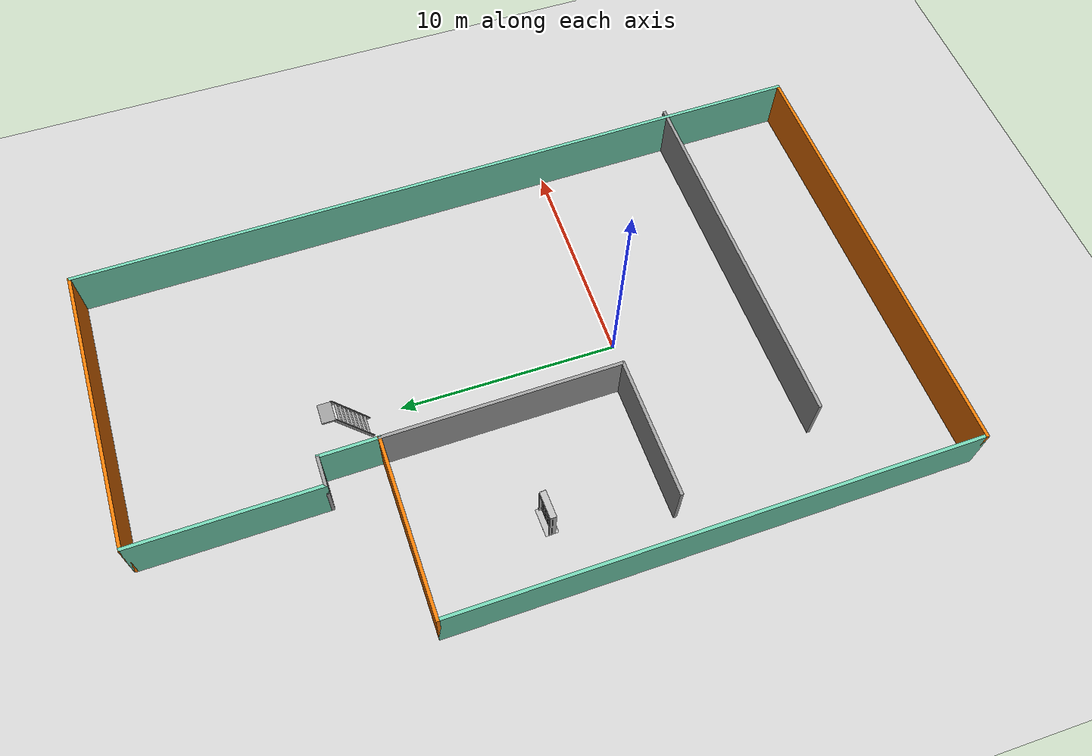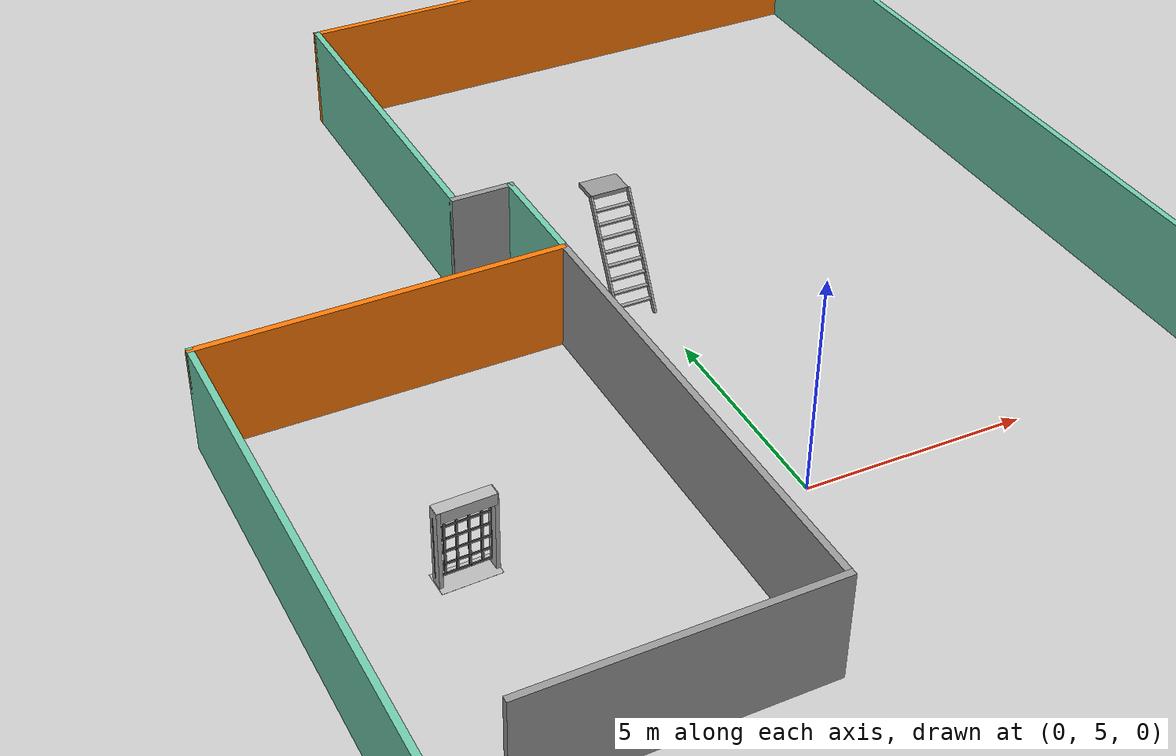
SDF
<sdf version="1.7">
 <world name="default">
  <light name="sun" type="directional">
   <pose>0 0 10 0 -0 0</pose>
   <diffuse>0.8 0.8 0.8 1</diffuse>
   <specular>0.2 0.2 0.2 1</specular>
   <attenuation>
    <range>1000</range>
    <constant>0.9</constant>
    <linear>0.01</linear>
    <quadratic>0.001</quadratic>
   </attenuation>
   <direction>-0.5 0.1 -0.9</direction>
   <spot><inner_angle>0</inner_angle><outer_angle>0</outer_angle><falloff>0</falloff></spot>
  </light>
  <model name="ground_plane">
   <static>1</static>
   <link name="link">
    <collision name="collision">
     <geometry><plane><normal>0 0 1</normal><size>100 100</size></plane></geometry>
     <surface>
      <contact><collide_bitmask>65535</collide_bitmask></contact>
      <friction><ode><mu>100</mu><mu2>50</mu2></ode></friction>
     </surface>
    </collision>
    <visual name="visual">
     <cast_shadows>0</cast_shadows>
     <geometry><plane><normal>0 0 1</normal><size>100 100</size></plane></geometry>
     <material>
      <script><uri>file://media/materials/scripts/gazebo.material</uri><name>Gazebo/Grey</name></script>
     </material>
    </visual>
   </link>
  </model>
  <gravity>0 0 -9.8</gravity>
  <magnetic_field>6e-06 2.3e-05 -4.2e-05</magnetic_field>
  <atmosphere type="adiabatic"/>
  <physics type="ode">
   <max_step_size>0.001</max_step_size>
   <real_time_factor>1</real_time_factor>
   <real_time_update_rate>1000</real_time_update_rate>
  </physics>
  <scene><ambient>0.4 0.4 0.4 1</ambient><background>0.7 0.7 0.7 1</background><shadows>1</shadows></scene>
  <spherical_coordinates>
   <surface_model>EARTH_WGS84</surface_model>
   <latitude_deg>0</latitude_deg>
   <longitude_deg>0</longitude_deg>
   <elevation>0</elevation>
   <heading_deg>0</heading_deg>
  </spherical_coordinates>
  <model name="Untitled">
   <pose>-0.061042 4.97125 0 0 0 -1.55645</pose>
   <link name="Wall_0">
    <collision name="Wall_0_Collision">
     <geometry><box><size>8.25 0.15 2.5</size></box></geometry>
     <pose>0 0 1.25 0 -0 0</pose>
    </collision>
    <visual name="Wall_0_Visual">
     <pose>0 0 1.25 0 -0 0</pose>
     <geometry><box><size>8.25 0.15 2.5</size></box></geometry>
     <material>
      <script><uri>file://media/materials/scripts/gazebo.material</uri><name>Gazebo/Grey</name></script>
      <ambient>0.996078 0.47451 0.0196078 1</ambient>
     </material>
     <meta><layer>0</layer></meta>
    </visual>
    <pose>-6.425 -6.1324 0 0 -0 -1.5708</pose>
   </link>
   <link name="Wall_1">
    <collision name="Wall_1_Collision">
     <geometry><box><size>24 0.15 2.5</size></box></geometry>
     <pose>0 0 1.25 0 -0 0</pose>
    </collision>
    <visual name="Wall_1_Visual">
     <pose>0 0 1.25 0 -0 0</pose>
     <geometry><box><size>24 0.15 2.5</size></box></geometry>
     <material>
      <script><uri>file://media/materials/scripts/gazebo.material</uri><name>Gazebo/Grey</name></script>
      <ambient>0.435294 0.796078 0.67451 1</ambient>
     </material>
     <meta><layer>0</layer></meta>
    </visual>
    <pose>5.5 -10.1824 0 0 -0 0</pose>
   </link>
   <link name="Wall_10">
    <collision name="Wall_10_Collision">
     <geometry><box><size>6.5 0.15 2.5</size></box></geometry>
     <pose>0 0 1.25 0 -0 0</pose>
    </collision>
    <visual name="Wall_10_Visual">
     <pose>0 0 1.25 0 -0 0</pose>
     <geometry><box><size>6.5 0.15 2.5</size></box></geometry>
     <material>
      <script><uri>file://media/materials/scripts/gazebo.material</uri><name>Gazebo/Grey</name></script>
      <ambient>1 1 1 1</ambient>
     </material>
     <meta><layer>0</layer></meta>
    </visual>
    <pose>4.425 -5.2574 0 0 -0 -1.5708</pose>
   </link>
   <link name="Wall_12">
    <collision name="Wall_12_Collision">
     <geometry><box><size>17 0.15 2.5</size></box></geometry>
     <pose>0 0 1.25 0 -0 0</pose>
    </collision>
    <visual name="Wall_12_Visual">
     <pose>0 0 1.25 0 -0 0</pose>
     <geometry><box><size>17 0.15 2.5</size></box></geometry>
     <material>
      <script><uri>file://media/materials/scripts/gazebo.material</uri><name>Gazebo/Grey</name></script>
      <ambient>1 1 1 1</ambient>
     </material>
     <meta><layer>0</layer></meta>
    </visual>
    <pose>11.4854 1.7574 0 0 -0 -1.5708</pose>
   </link>
   <link name="Wall_2">
    <collision name="Wall_2_Collision">
     <geometry><box><size>20.25 0.15 2.5</size></box></geometry>
     <pose>0 0 1.25 0 -0 0</pose>
    </collision>
    <visual name="Wall_2_Visual">
     <pose>0 0 1.25 0 -0 0</pose>
     <geometry><box><size>20.25 0.15 2.5</size></box></geometry>
     <material>
      <script><uri>file://media/materials/scripts/gazebo.material</uri><name>Gazebo/Grey</name></script>
      <ambient>0.996078 0.47451 0.0196078 1</ambient>
     </material>
     <meta><layer>0</layer></meta>
    </visual>
    <pose>17.425 -0.1324 0 0 -0 1.5708</pose>
   </link>
   <link name="Wall_3">
    <collision name="Wall_3_Collision">
     <geometry><box><size>35 0.15 2.5</size></box></geometry>
     <pose>0 0 1.25 0 -0 0</pose>
    </collision>
    <visual name="Wall_3_Visual">
     <pose>0 0 1.25 0 -0 0</pose>
     <geometry><box><size>35 0.15 2.5</size></box></geometry>
     <material>
      <script><uri>file://media/materials/scripts/gazebo.material</uri><name>Gazebo/Grey</name></script>
      <ambient>0.435294 0.796078 0.67451 1</ambient>
     </material>
     <meta><layer>0</layer></meta>
    </visual>
    <pose>-0 9.9176 0 0 -0 3.14159</pose>
   </link>
   <link name="Wall_4">
    <collision name="Wall_4_Collision">
     <geometry><box><size>13.5 0.15 2.5</size></box></geometry>
     <pose>0 0 1.25 0 -0 0</pose>
    </collision>
    <visual name="Wall_4_Visual">
     <pose>0 0 1.25 0 -0 0</pose>
     <geometry><box><size>13.5 0.15 2.5</size></box></geometry>
     <material>
      <script><uri>file://media/materials/scripts/gazebo.material</uri><name>Gazebo/Grey</name></script>
      <ambient>0.996078 0.47451 0.0196078 1</ambient>
     </material>
     <meta><layer>0</layer></meta>
    </visual>
    <pose>-17.425 3.2426 0 0 -0 -1.5708</pose>
   </link>
   <link name="Wall_5">
    <collision name="Wall_5_Collision">
     <geometry><box><size>8.5 0.15 2.5</size></box></geometry>
     <pose>0 0 1.25 0 -0 0</pose>
    </collision>
    <visual name="Wall_5_Visual">
     <pose>0 0 1.25 0 -0 0</pose>
     <geometry><box><size>8.5 0.15 2.5</size></box></geometry>
     <material>
      <script><uri>file://media/materials/scripts/gazebo.material</uri><name>Gazebo/Grey</name></script>
      <ambient>0.435294 0.796078 0.67451 1</ambient>
     </material>
     <meta><layer>0</layer></meta>
    </visual>
    <pose>-13.25 -3.4324 0 0 -0 0</pose>
   </link>
   <link name="Wall_6">
    <collision name="Wall_6_Collision">
     <geometry><box><size>1.5 0.15 2.5</size></box></geometry>
     <pose>0 0 1.25 0 -0 0</pose>
    </collision>
    <visual name="Wall_6_Visual">
     <pose>0 0 1.25 0 -0 0</pose>
     <geometry><box><size>1.5 0.15 2.5</size></box></geometry>
     <material>
      <script><uri>file://media/materials/scripts/gazebo.material</uri><name>Gazebo/Grey</name></script>
      <ambient>1 1 1 1</ambient>
     </material>
     <meta><layer>0</layer></meta>
    </visual>
    <pose>-9.075 -2.7574 0 0 -0 1.5708</pose>
   </link>
   <link name="Wall_7">
    <collision name="Wall_7_Collision">
     <geometry><box><size>2.8 0.15 2.5</size></box></geometry>
     <pose>0 0 1.25 0 -0 0</pose>
    </collision>
    <visual name="Wall_7_Visual">
     <pose>0 0 1.25 0 -0 0</pose>
     <geometry><box><size>2.8 0.15 2.5</size></box></geometry>
     <material>
      <script><uri>file://media/materials/scripts/gazebo.material</uri><name>Gazebo/Grey</name></script>
      <ambient>0.435294 0.796078 0.67451 1</ambient>
     </material>
     <meta><layer>0</layer></meta>
    </visual>
    <pose>-7.75 -2.0824 0 0 -0 0</pose>
   </link>
   <link name="Wall_9">
    <collision name="Wall_9_Collision">
     <geometry><box><size>11 0.15 2.5</size></box></geometry>
     <pose>0 0 1.25 0 -0 0</pose>
    </collision>
    <visual name="Wall_9_Visual">
     <pose>0 0 1.25 0 -0 0</pose>
     <geometry><box><size>11 0.15 2.5</size></box></geometry>
     <material>
      <script><uri>file://media/materials/scripts/gazebo.material</uri><name>Gazebo/Grey</name></script>
      <ambient>1 1 1 1</ambient>
     </material>
     <meta><layer>0</layer></meta>
    </visual>
    <pose>-1 -2.0824 0 0 -0 0</pose>
   </link>
   <static>1</static>
  </model>
  <model name="frc2016_portcullis">
   <link name="base">
    <inertial>
     <mass>50</mass>
     <pose>0 0 1.02941 0 -0 0</pose>
     <inertia><ixx>3.81711</ixx><ixy>0</ixy><ixz>0</ixz><iyy>4.87698</iyy><iyz>0</iyz><izz>1.6283</izz></inertia>
    </inertial>
    <visual name="platform">
     <pose>0 0 0.07284 0 -0 0</pose>
     <geometry><box><size>1.27 0.5842 0.003175</size></box></geometry>
    </visual>
    <collision name="platform">
     <pose>0 0 0.07284 0 -0 0</pose>
     <geometry><box><size>1.27 0.5842 0.003175</size></box></geometry>
    </collision>
    <visual name="left_column">
     <pose>0.59284 0 0.99042 0 -0 0</pose>
     <geometry><box><size>0.08375 0.28575 1.83198</size></box></geometry>
    </visual>
    <collision name="left_column">
     <pose>0.59284 0 0.99042 0 -0 0</pose>
     <geometry><box><size>0.08375 0.28575 1.83198</size></box></geometry>
    </collision>
    <visual name="right_column">
     <pose>-0.57759 0 0.99042 0 -0 0</pose>
     <geometry><box><size>0.08375 0.28575 1.83198</size></box></geometry>
    </visual>
    <collision name="right_column">
     <pose>-0.57759 0 0.99042 0 -0 0</pose>
     <geometry><box><size>0.08375 0.28575 1.83198</size></box></geometry>
    </collision>
    <visual name="top">
     <pose>-0.00034 0 1.77722 0 -0 0</pose>
     <geometry><box><size>1.22962 0.28575 0.26657</size></box></geometry>
    </visual>
    <collision name="top">
     <pose>-0.00034 0 1.77722 0 -0 0</pose>
     <geometry><box><size>1.22962 0.28575 0.26657</size></box></geometry>
    </collision>
    <visual name="castor1">
     <pose>-0.45651 -0.16234 0.03272 0 -0 0</pose>
     <geometry><sphere><radius>0.03272</radius></sphere></geometry>
    </visual>
    <collision name="castor1">
     <pose>-0.45651 -0.16234 0.03272 0 -0 0</pose>
     <geometry><sphere><radius>0.03272</radius></sphere></geometry>
    </collision>
    <visual name="castor2">
     <pose>-0.27883 0.21836 0.03272 0 -0 0</pose>
     <geometry><sphere><radius>0.03272</radius></sphere></geometry>
    </visual>
    <collision name="castor2">
     <pose>-0.27883 0.21836 0.03272 0 -0 0</pose>
     <geometry><sphere><radius>0.03272</radius></sphere></geometry>
    </collision>
    <visual name="castor3">
     <pose>0.28083 0.21906 0.03272 0 -0 0</pose>
     <geometry><sphere><radius>0.03272</radius></sphere></geometry>
    </visual>
    <collision name="castor3">
     <pose>0.28083 0.21906 0.03272 0 -0 0</pose>
     <geometry><sphere><radius>0.03272</radius></sphere></geometry>
    </collision>
    <visual name="castor4">
     <pose>0.45871 -0.16186 0.03272 0 -0 0</pose>
     <geometry><sphere><radius>0.03272</radius></sphere></geometry>
    </visual>
    <collision name="castor4">
     <pose>0.45871 -0.16186 0.03272 0 -0 0</pose>
     <geometry><sphere><radius>0.03272</radius></sphere></geometry>
    </collision>
   </link>
   <link name="gate">
    <pose>-0.0287 0.02885 0.93327 0 -0 0</pose>
    <inertial>
     <mass>2</mass>
     <inertia><ixx>3.81711</ixx><ixy>0</ixy><ixz>0</ixz><iyy>4.87698</iyy><iyz>0</iyz><izz>1.6283</izz></inertia>
    </inertial>
    <collision name="collision"><geometry><box><size>1.1938 0.02496 1.45732</size></box></geometry></collision>
    <visual name="horz_1">
     <pose>0 0 -0.70326 0 -0 0</pose>
     <geometry><box><size>1.1938 0.02496 0.0508</size></box></geometry>
     <material><ambient>0.4 0.4 0.4 1</ambient><diffuse>0.4 0.4 0.4 1</diffuse></material>
    </visual>
    <visual name="horz_2">
     <pose>0 0 -0.44926 0 -0 0</pose>
     <geometry><box><size>1.1938 0.02496 0.0508</size></box></geometry>
     <material><ambient>0.4 0.4 0.4 1</ambient><diffuse>0.4 0.4 0.4 1</diffuse></material>
    </visual>
    <visual name="horz_3">
     <pose>0 0 -0.14517 0 -0 0</pose>
     <geometry><box><size>1.1938 0.02496 0.0508</size></box></geometry>
     <material><ambient>0.4 0.4 0.4 1</ambient><diffuse>0.4 0.4 0.4 1</diffuse></material>
    </visual>
    <visual name="horz_4">
     <pose>0 0 0.16034 0 -0 0</pose>
     <geometry><box><size>1.1938 0.02496 0.0508</size></box></geometry>
     <material><ambient>0.4 0.4 0.4 1</ambient><diffuse>0.4 0.4 0.4 1</diffuse></material>
    </visual>
    <visual name="horz_5">
     <pose>0 0 0.46514 0 -0 0</pose>
     <geometry><box><size>1.1938 0.02496 0.0508</size></box></geometry>
     <material><ambient>0.4 0.4 0.4 1</ambient><diffuse>0.4 0.4 0.4 1</diffuse></material>
    </visual>
    <visual name="horz_6">
     <pose>0 0 0.72994 0 -0 0</pose>
     <geometry><box><size>1.1938 0.02496 0.0508</size></box></geometry>
     <material><ambient>0.4 0.4 0.4 1</ambient><diffuse>0.4 0.4 0.4 1</diffuse></material>
    </visual>
    <visual name="vert_1">
     <pose>-0.58448 0 0 0 -0 0</pose>
     <geometry><box><size>0.02495 0.02496 1.45732</size></box></geometry>
     <material><ambient>0.4 0.4 0.4 1</ambient><diffuse>0.4 0.4 0.4 1</diffuse></material>
    </visual>
    <visual name="vert_2">
     <pose>-0.38128 0 0 0 -0 0</pose>
     <geometry><box><size>0.0508 0.02496 1.45732</size></box></geometry>
     <material><ambient>0.4 0.4 0.4 1</ambient><diffuse>0.4 0.4 0.4 1</diffuse></material>
    </visual>
    <visual name="vert_3">
     <pose>-0.12728 0 0 0 -0 0</pose>
     <geometry><box><size>0.0508 0.02496 1.45732</size></box></geometry>
     <material><ambient>0.4 0.4 0.4 1</ambient><diffuse>0.4 0.4 0.4 1</diffuse></material>
    </visual>
    <visual name="vert_4">
     <pose>0.12672 0 0 0 -0 0</pose>
     <geometry><box><size>0.0508 0.02496 1.45732</size></box></geometry>
     <material><ambient>0.4 0.4 0.4 1</ambient><diffuse>0.4 0.4 0.4 1</diffuse></material>
    </visual>
    <visual name="vert_5">
     <pose>0.38072 0 0 0 -0 0</pose>
     <geometry><box><size>0.0508 0.02496 1.45732</size></box></geometry>
     <material><ambient>0.4 0.4 0.4 1</ambient><diffuse>0.4 0.4 0.4 1</diffuse></material>
    </visual>
    <visual name="vert_6">
     <pose>0.58392 0 0 0 -0 0</pose>
     <geometry><box><size>0.02495 0.02496 1.45732</size></box></geometry>
     <material><ambient>0.4 0.4 0.4 1</ambient><diffuse>0.4 0.4 0.4 1</diffuse></material>
    </visual>
   </link>
   <joint name="joint" type="prismatic">
    <parent>base</parent>
    <child>gate</child>
    <axis>
     <xyz>0 0 1</xyz>
     <limit><lower>0</lower><upper>1</upper></limit>
     <dynamics><spring_reference>0</spring_reference><spring_stiffness>0</spring_stiffness></dynamics>
    </axis>
   </joint>
   <pose>-6.99522 5.60878 -0 0 -0 0.041996</pose>
  </model>
  <model name="ladder_60deg_0rails">
   <static>1</static>
   <link name="step0">
    <pose>0 0.15396 0.266667 0 -0 0</pose>
    <inertial>
     <mass>9.75482</mass>
     <inertia>
      <ixx>0.00957124</ixx>
      <iyy>0.65963</iyy>
      <izz>0.666842</izz>
      <ixy>0</ixy>
      <ixz>0</ixz>
      <iyz>0</iyz>
     </inertia>
    </inertial>
    <collision name="collision"><geometry><box><size>0.9 0.1016 0.0381</size></box></geometry></collision>
    <visual name="visual">
     <geometry><box><size>0.9 0.1016 0.0381</size></box></geometry>
     <material>
      <script><uri>file://media/materials/scripts/gazebo.material</uri><name>Gazebo/Grey</name></script>
     </material>
    </visual>
   </link>
   <link name="step1">
    <pose>0 0.30792 0.533333 0 -0 0</pose>
    <inertial>
     <mass>9.75482</mass>
     <inertia>
      <ixx>0.00957124</ixx>
      <iyy>0.65963</iyy>
      <izz>0.666842</izz>
      <ixy>0</ixy>
      <ixz>0</ixz>
      <iyz>0</iyz>
     </inertia>
    </inertial>
    <collision name="collision"><geometry><box><size>0.9 0.1016 0.0381</size></box></geometry></collision>
    <visual name="visual">
     <geometry><box><size>0.9 0.1016 0.0381</size></box></geometry>
     <material>
      <script><uri>file://media/materials/scripts/gazebo.material</uri><name>Gazebo/Grey</name></script>
     </material>
    </visual>
   </link>
   <link name="step2">
    <pose>0 0.46188 0.8 0 -0 0</pose>
    <inertial>
     <mass>9.75482</mass>
     <inertia>
      <ixx>0.00957124</ixx>
      <iyy>0.65963</iyy>
      <izz>0.666842</izz>
      <ixy>0</ixy>
      <ixz>0</ixz>
      <iyz>0</iyz>
     </inertia>
    </inertial>
    <collision name="collision"><geometry><box><size>0.9 0.1016 0.0381</size></box></geometry></collision>
    <visual name="visual">
     <geometry><box><size>0.9 0.1016 0.0381</size></box></geometry>
     <material>
      <script><uri>file://media/materials/scripts/gazebo.material</uri><name>Gazebo/Grey</name></script>
     </material>
    </visual>
   </link>
   <link name="step3">
    <pose>0 0.61584 1.06667 0 -0 0</pose>
    <inertial>
     <mass>9.75482</mass>
     <inertia>
      <ixx>0.00957124</ixx>
      <iyy>0.65963</iyy>
      <izz>0.666842</izz>
      <ixy>0</ixy>
      <ixz>0</ixz>
      <iyz>0</iyz>
     </inertia>
    </inertial>
    <collision name="collision"><geometry><box><size>0.9 0.1016 0.0381</size></box></geometry></collision>
    <visual name="visual">
     <geometry><box><size>0.9 0.1016 0.0381</size></box></geometry>
     <material>
      <script><uri>file://media/materials/scripts/gazebo.material</uri><name>Gazebo/Grey</name></script>
     </material>
    </visual>
   </link>
   <link name="step4">
    <pose>0 0.7698 1.33333 0 -0 0</pose>
    <inertial>
     <mass>9.75482</mass>
     <inertia>
      <ixx>0.00957124</ixx>
      <iyy>0.65963</iyy>
      <izz>0.666842</izz>
      <ixy>0</ixy>
      <ixz>0</ixz>
      <iyz>0</iyz>
     </inertia>
    </inertial>
    <collision name="collision"><geometry><box><size>0.9 0.1016 0.0381</size></box></geometry></collision>
    <visual name="visual">
     <geometry><box><size>0.9 0.1016 0.0381</size></box></geometry>
     <material>
      <script><uri>file://media/materials/scripts/gazebo.material</uri><name>Gazebo/Grey</name></script>
     </material>
    </visual>
   </link>
   <link name="step5">
    <pose>0 0.92376 1.6 0 -0 0</pose>
    <inertial>
     <mass>9.75482</mass>
     <inertia>
      <ixx>0.00957124</ixx>
      <iyy>0.65963</iyy>
      <izz>0.666842</izz>
      <ixy>0</ixy>
      <ixz>0</ixz>
      <iyz>0</iyz>
     </inertia>
    </inertial>
    <collision name="collision"><geometry><box><size>0.9 0.1016 0.0381</size></box></geometry></collision>
    <visual name="visual">
     <geometry><box><size>0.9 0.1016 0.0381</size></box></geometry>
     <material>
      <script><uri>file://media/materials/scripts/gazebo.material</uri><name>Gazebo/Grey</name></script>
     </material>
    </visual>
   </link>
   <link name="step6">
    <pose>0 1.07772 1.86667 0 -0 0</pose>
    <inertial>
     <mass>9.75482</mass>
     <inertia>
      <ixx>0.00957124</ixx>
      <iyy>0.65963</iyy>
      <izz>0.666842</izz>
      <ixy>0</ixy>
      <ixz>0</ixz>
      <iyz>0</iyz>
     </inertia>
    </inertial>
    <collision name="collision"><geometry><box><size>0.9 0.1016 0.0381</size></box></geometry></collision>
    <visual name="visual">
     <geometry><box><size>0.9 0.1016 0.0381</size></box></geometry>
     <material>
      <script><uri>file://media/materials/scripts/gazebo.material</uri><name>Gazebo/Grey</name></script>
     </material>
    </visual>
   </link>
   <link name="step7">
    <pose>0 1.23168 2.13333 0 -0 0</pose>
    <inertial>
     <mass>9.75482</mass>
     <inertia>
      <ixx>0.00957124</ixx>
      <iyy>0.65963</iyy>
      <izz>0.666842</izz>
      <ixy>0</ixy>
      <ixz>0</ixz>
      <iyz>0</iyz>
     </inertia>
    </inertial>
    <collision name="collision"><geometry><box><size>0.9 0.1016 0.0381</size></box></geometry></collision>
    <visual name="visual">
     <geometry><box><size>0.9 0.1016 0.0381</size></box></geometry>
     <material>
      <script><uri>file://media/materials/scripts/gazebo.material</uri><name>Gazebo/Grey</name></script>
     </material>
    </visual>
   </link>
   <link name="landing">
    <pose>0 1.68564 2.4 0 -0 0</pose>
    <inertial>
     <mass>57.6072</mass>
     <inertia><ixx>1.73518</ixx><iyy>3.89545</iyy><izz>5.6167</izz><ixy>0</ixy><ixz>0</ixz><iyz>0</iyz></inertia>
    </inertial>
    <collision name="collision"><geometry><box><size>0.9 0.6 0.1016</size></box></geometry></collision>
    <visual name="visual">
     <geometry><box><size>0.9 0.6 0.1016</size></box></geometry>
     <material>
      <script><uri>file://media/materials/scripts/gazebo.material</uri><name>Gazebo/Grey</name></script>
     </material>
    </visual>
   </link>
   <link name="left_side_wall">
    <pose>-0.45 0.69282 1.2 1.0472 -0 0</pose>
    <collision name="collision"><geometry><box><size>0.0508 2.85128 0.13</size></box></geometry></collision>
    <visual name="visual">
     <geometry><box><size>0.0508 2.85128 0.13</size></box></geometry>
     <material>
      <script><uri>file://media/materials/scripts/gazebo.material</uri><name>Gazebo/Grey</name></script>
     </material>
    </visual>
   </link>
   <link name="right_side_wall">
    <pose>0.45 0.69282 1.2 1.0472 -0 0</pose>
    <collision name="collision"><geometry><box><size>0.0508 2.85128 0.13</size></box></geometry></collision>
    <visual name="visual">
     <geometry><box><size>0.0508 2.85128 0.13</size></box></geometry>
     <material>
      <script><uri>file://media/materials/scripts/gazebo.material</uri><name>Gazebo/Grey</name></script>
     </material>
    </visual>
   </link>
   <pose>-0.417421 11.5049 0 0 -0 0</pose>
  </model>
 </world>
</sdf>
